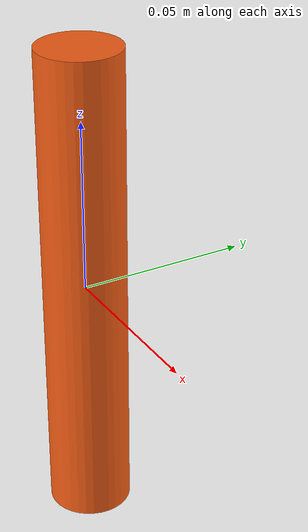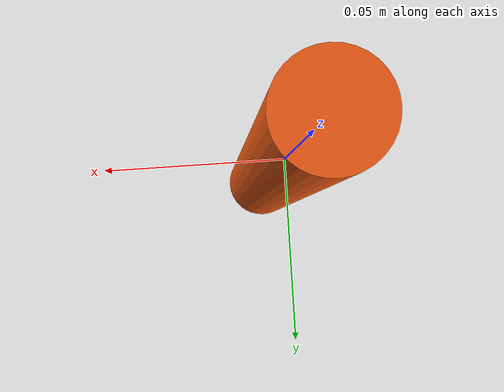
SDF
<?xml version="1.0"?>
<sdf version="1.9">
  <model name="sausage2">
    <static>false</static>
    <link name="sausage2_link">
      <velocity_decay>
        <linear>1.000000</linear>
        <angular>1.800000</angular>
      </velocity_decay>
      <inertial>
        <mass>0.030000</mass>
        <inertia>
          <ixx>0.000030000</ixx>
          <iyy>0.000030000</iyy>
          <izz>0.000030000</izz>
          <ixy>0</ixy>
          <ixz>0</ixz>
          <iyz>0</iyz>
        </inertia>
      </inertial>
      <visual name="sausage2_visual">
        <geometry>
          <mesh>
            <uri>meshes/sausage2.obj</uri>
            <scale>1.200000 1.200000 0.887000</scale>
          </mesh>
        </geometry>
        <material>
          <ambient>0.237500 0.090000 0.020000 1.000000</ambient>
          <diffuse>0.950000 0.360000 0.080000 1.000000</diffuse>
          <specular>0.120000 0.120000 0.120000 1.000000</specular>
        </material>
      </visual>
      <collision name="sausage2_sausage2_collision">
        <pose>-0.000000016 0.000000000 0.000000045 0 0 0</pose>
        <geometry>
          <box>
            <size>0.024000000 0.024000000 0.142000000</size>
          </box>
        </geometry>
        <max_contacts>20</max_contacts>
        <surface>
          <friction>
            <ode>
              <mu>100.0</mu>
              <mu2>100.0</mu2>
              <slip1>0.0</slip1>
              <slip2>0.0</slip2>
            </ode>
            <torsional>
              <coefficient>1.0</coefficient>
              <use_patch_radius>true</use_patch_radius>
              <patch_radius>0.020000</patch_radius>
              <surface_radius>0.010000</surface_radius>
              <ode>
                <slip>0.0</slip>
              </ode>
            </torsional>
          </friction>
          <contact>
            <ode>
              <soft_cfm>0.000000</soft_cfm>
              <soft_erp>0.800000</soft_erp>
              <kp>1000000.000000</kp>
              <kd>100.000000</kd>
              <max_vel>0.010000</max_vel>
              <min_depth>0.002000</min_depth>
            </ode>
          </contact>
        </surface>
      </collision>
    </link>
  </model>
</sdf>
